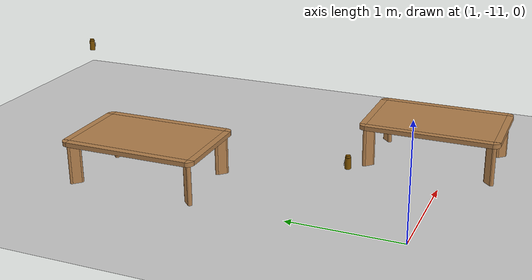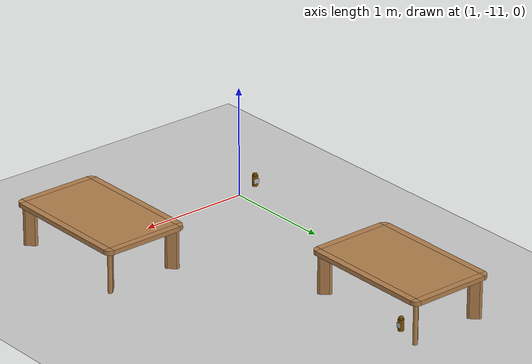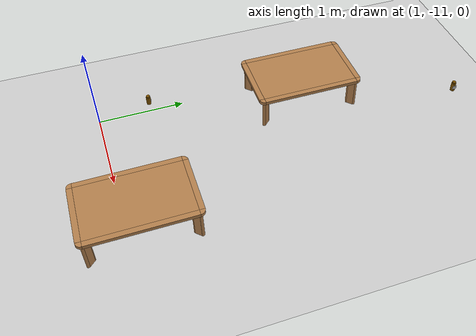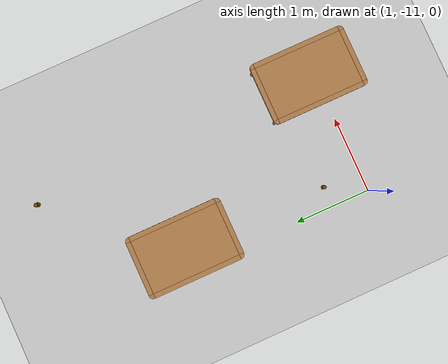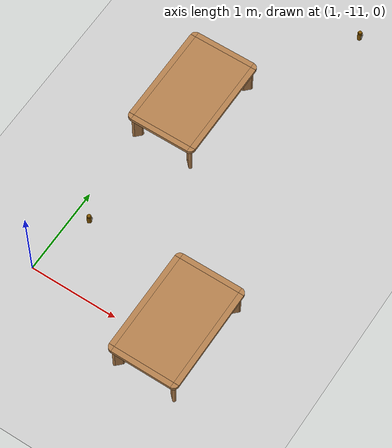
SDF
<sdf version="1.6">
 <world name="default">
  <model name="ground_plane">
   <static>1</static>
   <link name="link">
    <collision name="collision">
     <geometry><plane><normal>0 0 1</normal><size>100 100</size></plane></geometry>
     <surface><friction><ode><mu>100</mu><mu2>50</mu2></ode></friction></surface>
    </collision>
    <visual name="visual">
     <cast_shadows>0</cast_shadows>
     <geometry><plane><normal>0 0 1</normal><size>100 100</size></plane></geometry>
     <material>
      <script><uri>file://media/materials/scripts/gazebo.material</uri><name>Gazebo/Grey</name></script>
     </material>
    </visual>
   </link>
  </model>
  <model name="bottle_clone_0">
   <link name="link">
    <inertial>
     <mass>0.05</mass>
     <inertia><ixx>0.00058</ixx><ixy>0</ixy><ixz>0</ixz><iyy>0.00058</iyy><iyz>0</iyz><izz>0.00016</izz></inertia>
    </inertial>
    <visual name="top">
     <pose>0 0 0.0555 0 -0 0</pose>
     <geometry><cylinder><radius>0.019</radius><length>0.016</length></cylinder></geometry>
     <material>
      <ambient>1 0.647 0 1</ambient>
      <diffuse>0.5 0.3235 0 1</diffuse>
      <specular>0.1 0.1 0.1 1</specular>
      <emissive>0 0 0 0</emissive>
     </material>
    </visual>
    <collision name="collision_top">
     <pose>0 0 0.0555 0 -0 0</pose>
     <geometry><cylinder><radius>0.019</radius><length>0.016</length></cylinder></geometry>
     <surface>
      <bounce><restitution_coefficient>0.2</restitution_coefficient><threshold>0</threshold></bounce>
      <contact><ode><kp>10000</kp><max_vel>10</max_vel></ode></contact>
     </surface>
    </collision>
    <visual name="bottom">
     <geometry><cylinder><radius>0.0245</radius><length>0.095</length></cylinder></geometry>
     <material>
      <ambient>1 0.7 0.3 1</ambient>
      <diffuse>0.5 0.3235 0 1</diffuse>
      <specular>0.1 0.1 0.1 1</specular>
      <emissive>0 0 0 0</emissive>
     </material>
    </visual>
    <collision name="collision_bottom">
     <geometry><cylinder><radius>0.0245</radius><length>0.095</length></cylinder></geometry>
     <surface>
      <bounce><restitution_coefficient>0.2</restitution_coefficient><threshold>0</threshold></bounce>
      <contact><ode><kp>100000</kp><max_vel>10</max_vel></ode></contact>
     </surface>
    </collision>
    <velocity_decay><linear>0</linear><angular>0</angular></velocity_decay>
    <visual name="marker_4000">
     <pose>0.0245 0 0 0 1.57 3.141</pose>
     <geometry><box><size>0.045 0.045 0.0001</size></box></geometry>
     <material>
      <script>
       <uri>model://marker/4000/scripts</uri>
       <uri>model://marker/4000/textures</uri>
       <name>Marker/4000</name>
      </script>
     </material>
    </visual>
   </link>
   <static>0</static>
   <pose>2.50267 -7.30037 0.7475 6e-06 -7e-06 0.007734</pose>
  </model>
  <model name="kitchen_lowtable_clone">
   <link name="link">
    <inertial>
     <mass>10</mass>
     <inertia><ixx>1</ixx><ixy>0</ixy><ixz>0</ixz><iyy>1</iyy><iyz>0</iyz><izz>1</izz></inertia>
    </inertial>
    <visual name="center_board">
     <pose>0 0 0.38 0 -0 0</pose>
     <geometry><box><size>0.68 1.13 0.04</size></box></geometry>
     <material>
      <script><uri>model://base_materials/wood/scripts/wood.material</uri><name>base_materials/wood</name></script>
     </material>
    </visual>
    <collision name="collision_center_board">
     <pose>0 0 0.38 0 -0 0</pose>
     <geometry><box><size>0.68 1.13 0.04</size></box></geometry>
    </collision>
    <visual name="front_board">
     <pose>0.37 0 0.38 0 -0 0</pose>
     <geometry><box><size>0.06 1.13 0.04</size></box></geometry>
     <material>
      <script><uri>model://base_materials/wood/scripts/wood.material</uri><name>base_materials/wood</name></script>
     </material>
    </visual>
    <collision name="collision_front_board">
     <pose>0.37 0 0.38 0 -0 0</pose>
     <geometry><box><size>0.06 1.13 0.04</size></box></geometry>
    </collision>
    <visual name="back_board">
     <pose>-0.37 0 0.38 0 -0 0</pose>
     <geometry><box><size>0.06 1.13 0.04</size></box></geometry>
     <material>
      <script><uri>model://base_materials/wood/scripts/wood.material</uri><name>base_materials/wood</name></script>
     </material>
    </visual>
    <collision name="collision_back_board">
     <pose>-0.37 0 0.38 0 -0 0</pose>
     <geometry><box><size>0.06 1.13 0.04</size></box></geometry>
    </collision>
    <visual name="right_board">
     <pose>0 0.595 0.38 0 -0 0</pose>
     <geometry><box><size>0.68 0.06 0.04</size></box></geometry>
     <material>
      <script><uri>model://base_materials/wood/scripts/wood.material</uri><name>base_materials/wood</name></script>
     </material>
    </visual>
    <collision name="collision_right_board">
     <pose>0 0.595 0.38 0 -0 0</pose>
     <geometry><box><size>0.68 0.06 0.04</size></box></geometry>
    </collision>
    <visual name="left_board">
     <pose>0 -0.595 0.38 0 -0 0</pose>
     <geometry><box><size>0.68 0.06 0.04</size></box></geometry>
     <material>
      <script><uri>model://base_materials/wood/scripts/wood.material</uri><name>base_materials/wood</name></script>
     </material>
    </visual>
    <collision name="collision_left_board">
     <pose>0 -0.595 0.38 0 -0 0</pose>
     <geometry><box><size>0.68 0.06 0.04</size></box></geometry>
    </collision>
    <visual name="front_right_corner_board">
     <pose>0.34 0.565 0.38 0 -0 0</pose>
     <geometry><cylinder><radius>0.06</radius><length>0.039</length></cylinder></geometry>
     <material>
      <script><uri>model://base_materials/wood/scripts/wood.material</uri><name>base_materials/wood</name></script>
     </material>
    </visual>
    <collision name="collision_front_right_corner_board">
     <pose>0.34 0.565 0.38 0 -0 0</pose>
     <geometry><cylinder><radius>0.06</radius><length>0.039</length></cylinder></geometry>
    </collision>
    <visual name="front_left_corner_board">
     <pose>0.34 -0.565 0.38 0 -0 0</pose>
     <geometry><cylinder><radius>0.06</radius><length>0.039</length></cylinder></geometry>
     <material>
      <script><uri>model://base_materials/wood/scripts/wood.material</uri><name>base_materials/wood</name></script>
     </material>
    </visual>
    <collision name="collision_front_left_corner_board">
     <pose>0.34 -0.565 0.38 0 -0 0</pose>
     <geometry><cylinder><radius>0.06</radius><length>0.039</length></cylinder></geometry>
    </collision>
    <visual name="front_back_right_corner_board">
     <pose>-0.34 0.565 0.38 0 -0 0</pose>
     <geometry><cylinder><radius>0.06</radius><length>0.039</length></cylinder></geometry>
     <material>
      <script><uri>model://base_materials/wood/scripts/wood.material</uri><name>base_materials/wood</name></script>
     </material>
    </visual>
    <collision name="collision_back_right_corner_board">
     <pose>-0.34 0.565 0.38 0 -0 0</pose>
     <geometry><cylinder><radius>0.06</radius><length>0.039</length></cylinder></geometry>
    </collision>
    <visual name="front_back_left_corner_board">
     <pose>-0.34 -0.565 0.38 0 -0 0</pose>
     <geometry><cylinder><radius>0.06</radius><length>0.039</length></cylinder></geometry>
     <material>
      <script><uri>model://base_materials/wood/scripts/wood.material</uri><name>base_materials/wood</name></script>
     </material>
    </visual>
    <collision name="collision_back_left_corner_board">
     <pose>-0.34 -0.565 0.38 0 -0 0</pose>
     <geometry><cylinder><radius>0.06</radius><length>0.039</length></cylinder></geometry>
    </collision>
    <visual name="front_left_corner_frame1">
     <pose>0.345858 -0.57086 0.18 0 -0 0</pose>
     <geometry><cylinder><radius>0.02</radius><length>0.36</length></cylinder></geometry>
     <material>
      <script><uri>model://base_materials/wood/scripts/wood.material</uri><name>base_materials/wood</name></script>
     </material>
    </visual>
    <collision name="collision_front_left_corner_frame1">
     <pose>0.345858 -0.57086 0.18 0 -0 0</pose>
     <geometry><cylinder><radius>0.02</radius><length>0.36</length></cylinder></geometry>
    </collision>
    <visual name="front_left_corner_frame2">
     <pose>0.317574 -0.54257 0.18 0 -0 0.7854</pose>
     <geometry><box><size>0.04 0.08 0.36</size></box></geometry>
     <material>
      <script><uri>model://base_materials/wood/scripts/wood.material</uri><name>base_materials/wood</name></script>
     </material>
    </visual>
    <collision name="collision_front_left_corner_frame2">
     <pose>0.317574 -0.54257 0.18 0 -0 0.7854</pose>
     <geometry><box><size>0.04 0.08 0.36</size></box></geometry>
    </collision>
    <visual name="front_left_corner_frame3">
     <pose>0.289289 -0.51429 0.18 0 -0 0</pose>
     <geometry><cylinder><radius>0.02</radius><length>0.36</length></cylinder></geometry>
     <material>
      <script><uri>model://base_materials/wood/scripts/wood.material</uri><name>base_materials/wood</name></script>
     </material>
    </visual>
    <collision name="collision_front_left_corner_frame3">
     <pose>0.289289 -0.51429 0.18 0 -0 0</pose>
     <geometry><cylinder><radius>0.02</radius><length>0.36</length></cylinder></geometry>
    </collision>
    <visual name="front_right_corner_frame1">
     <pose>0.345858 0.57086 0.18 0 -0 0</pose>
     <geometry><cylinder><radius>0.02</radius><length>0.36</length></cylinder></geometry>
     <material>
      <script><uri>model://base_materials/wood/scripts/wood.material</uri><name>base_materials/wood</name></script>
     </material>
    </visual>
    <collision name="collision_front_right_corner_frame1">
     <pose>0.345858 0.57086 0.18 0 -0 0</pose>
     <geometry><cylinder><radius>0.02</radius><length>0.36</length></cylinder></geometry>
    </collision>
    <visual name="front_right_corner_frame2">
     <pose>0.317574 0.54257 0.18 0 0 -0.7854</pose>
     <geometry><box><size>0.04 0.08 0.36</size></box></geometry>
     <material>
      <script><uri>model://base_materials/wood/scripts/wood.material</uri><name>base_materials/wood</name></script>
     </material>
    </visual>
    <collision name="collision_front_right_corner_frame2">
     <pose>0.317574 0.54257 0.18 0 0 -0.7854</pose>
     <geometry><box><size>0.04 0.08 0.36</size></box></geometry>
    </collision>
    <visual name="front_right_corner_frame3">
     <pose>0.289289 0.51429 0.18 0 -0 0</pose>
     <geometry><cylinder><radius>0.02</radius><length>0.36</length></cylinder></geometry>
     <material>
      <script><uri>model://base_materials/wood/scripts/wood.material</uri><name>base_materials/wood</name></script>
     </material>
    </visual>
    <collision name="collision_front_right_corner_frame3">
     <pose>0.289289 0.51429 0.18 0 -0 0</pose>
     <geometry><cylinder><radius>0.02</radius><length>0.36</length></cylinder></geometry>
    </collision>
    <visual name="back_left_corner_frame1">
     <pose>-0.345858 -0.57086 0.18 0 -0 0</pose>
     <geometry><cylinder><radius>0.02</radius><length>0.36</length></cylinder></geometry>
     <material>
      <script><uri>model://base_materials/wood/scripts/wood.material</uri><name>base_materials/wood</name></script>
     </material>
    </visual>
    <collision name="collision_back_left_corner_frame1">
     <pose>-0.345858 -0.57086 0.18 0 -0 0</pose>
     <geometry><cylinder><radius>0.02</radius><length>0.36</length></cylinder></geometry>
    </collision>
    <visual name="back_left_corner_frame2">
     <pose>-0.317574 -0.54257 0.18 0 0 -0.7854</pose>
     <geometry><box><size>0.04 0.08 0.36</size></box></geometry>
     <material>
      <script><uri>model://base_materials/wood/scripts/wood.material</uri><name>base_materials/wood</name></script>
     </material>
    </visual>
    <collision name="collision_back_left_corner_frame2">
     <pose>-0.317574 -0.54257 0.18 0 0 -0.7854</pose>
     <geometry><box><size>0.04 0.08 0.36</size></box></geometry>
    </collision>
    <visual name="back_left_corner_frame3">
     <pose>-0.289289 -0.51429 0.18 0 -0 0</pose>
     <geometry><cylinder><radius>0.02</radius><length>0.36</length></cylinder></geometry>
     <material>
      <script><uri>model://base_materials/wood/scripts/wood.material</uri><name>base_materials/wood</name></script>
     </material>
    </visual>
    <collision name="collision_back_left_corner_frame3">
     <pose>-0.289289 -0.51429 0.18 0 -0 0</pose>
     <geometry><cylinder><radius>0.02</radius><length>0.36</length></cylinder></geometry>
    </collision>
    <visual name="back_right_corner_frame1">
     <pose>-0.345858 0.57086 0.18 0 -0 0</pose>
     <geometry><cylinder><radius>0.02</radius><length>0.36</length></cylinder></geometry>
     <material>
      <script><uri>model://base_materials/wood/scripts/wood.material</uri><name>base_materials/wood</name></script>
     </material>
    </visual>
    <collision name="collision_back_right_corner_frame1">
     <pose>-0.345858 0.57086 0.18 0 -0 0</pose>
     <geometry><cylinder><radius>0.02</radius><length>0.36</length></cylinder></geometry>
    </collision>
    <visual name="back_right_corner_frame2">
     <pose>-0.317574 0.54257 0.18 0 -0 0.7854</pose>
     <geometry><box><size>0.04 0.08 0.36</size></box></geometry>
     <material>
      <script><uri>model://base_materials/wood/scripts/wood.material</uri><name>base_materials/wood</name></script>
     </material>
    </visual>
    <collision name="collision_back_right_corner_frame2">
     <pose>-0.317574 0.54257 0.18 0 -0 0.7854</pose>
     <geometry><box><size>0.04 0.08 0.36</size></box></geometry>
    </collision>
    <visual name="back_right_corner_frame3">
     <pose>-0.289289 0.51429 0.18 0 -0 0</pose>
     <geometry><cylinder><radius>0.02</radius><length>0.36</length></cylinder></geometry>
     <material>
      <script><uri>model://base_materials/wood/scripts/wood.material</uri><name>base_materials/wood</name></script>
     </material>
    </visual>
    <collision name="collision_back_right_corner_frame3">
     <pose>-0.289289 0.51429 0.18 0 -0 0</pose>
     <geometry><cylinder><radius>0.02</radius><length>0.36</length></cylinder></geometry>
    </collision>
    <velocity_decay><linear>0</linear><angular>0</angular></velocity_decay>
   </link>
   <static>1</static>
   <pose>1.3285 -8.6006 0 0 -0 0</pose>
  </model>
  <model name="kitchen_lowtable_clone_1">
   <link name="link">
    <inertial>
     <mass>10</mass>
     <inertia><ixx>1</ixx><ixy>0</ixy><ixz>0</ixz><iyy>1</iyy><iyz>0</iyz><izz>1</izz></inertia>
    </inertial>
    <visual name="center_board">
     <pose>0 0 0.38 0 -0 0</pose>
     <geometry><box><size>0.68 1.13 0.04</size></box></geometry>
     <material>
      <script><uri>model://base_materials/wood/scripts/wood.material</uri><name>base_materials/wood</name></script>
     </material>
    </visual>
    <collision name="collision_center_board">
     <pose>0 0 0.38 0 -0 0</pose>
     <geometry><box><size>0.68 1.13 0.04</size></box></geometry>
    </collision>
    <visual name="front_board">
     <pose>0.37 0 0.38 0 -0 0</pose>
     <geometry><box><size>0.06 1.13 0.04</size></box></geometry>
     <material>
      <script><uri>model://base_materials/wood/scripts/wood.material</uri><name>base_materials/wood</name></script>
     </material>
    </visual>
    <collision name="collision_front_board">
     <pose>0.37 0 0.38 0 -0 0</pose>
     <geometry><box><size>0.06 1.13 0.04</size></box></geometry>
    </collision>
    <visual name="back_board">
     <pose>-0.37 0 0.38 0 -0 0</pose>
     <geometry><box><size>0.06 1.13 0.04</size></box></geometry>
     <material>
      <script><uri>model://base_materials/wood/scripts/wood.material</uri><name>base_materials/wood</name></script>
     </material>
    </visual>
    <collision name="collision_back_board">
     <pose>-0.37 0 0.38 0 -0 0</pose>
     <geometry><box><size>0.06 1.13 0.04</size></box></geometry>
    </collision>
    <visual name="right_board">
     <pose>0 0.595 0.38 0 -0 0</pose>
     <geometry><box><size>0.68 0.06 0.04</size></box></geometry>
     <material>
      <script><uri>model://base_materials/wood/scripts/wood.material</uri><name>base_materials/wood</name></script>
     </material>
    </visual>
    <collision name="collision_right_board">
     <pose>0 0.595 0.38 0 -0 0</pose>
     <geometry><box><size>0.68 0.06 0.04</size></box></geometry>
    </collision>
    <visual name="left_board">
     <pose>0 -0.595 0.38 0 -0 0</pose>
     <geometry><box><size>0.68 0.06 0.04</size></box></geometry>
     <material>
      <script><uri>model://base_materials/wood/scripts/wood.material</uri><name>base_materials/wood</name></script>
     </material>
    </visual>
    <collision name="collision_left_board">
     <pose>0 -0.595 0.38 0 -0 0</pose>
     <geometry><box><size>0.68 0.06 0.04</size></box></geometry>
    </collision>
    <visual name="front_right_corner_board">
     <pose>0.34 0.565 0.38 0 -0 0</pose>
     <geometry><cylinder><radius>0.06</radius><length>0.039</length></cylinder></geometry>
     <material>
      <script><uri>model://base_materials/wood/scripts/wood.material</uri><name>base_materials/wood</name></script>
     </material>
    </visual>
    <collision name="collision_front_right_corner_board">
     <pose>0.34 0.565 0.38 0 -0 0</pose>
     <geometry><cylinder><radius>0.06</radius><length>0.039</length></cylinder></geometry>
    </collision>
    <visual name="front_left_corner_board">
     <pose>0.34 -0.565 0.38 0 -0 0</pose>
     <geometry><cylinder><radius>0.06</radius><length>0.039</length></cylinder></geometry>
     <material>
      <script><uri>model://base_materials/wood/scripts/wood.material</uri><name>base_materials/wood</name></script>
     </material>
    </visual>
    <collision name="collision_front_left_corner_board">
     <pose>0.34 -0.565 0.38 0 -0 0</pose>
     <geometry><cylinder><radius>0.06</radius><length>0.039</length></cylinder></geometry>
    </collision>
    <visual name="front_back_right_corner_board">
     <pose>-0.34 0.565 0.38 0 -0 0</pose>
     <geometry><cylinder><radius>0.06</radius><length>0.039</length></cylinder></geometry>
     <material>
      <script><uri>model://base_materials/wood/scripts/wood.material</uri><name>base_materials/wood</name></script>
     </material>
    </visual>
    <collision name="collision_back_right_corner_board">
     <pose>-0.34 0.565 0.38 0 -0 0</pose>
     <geometry><cylinder><radius>0.06</radius><length>0.039</length></cylinder></geometry>
    </collision>
    <visual name="front_back_left_corner_board">
     <pose>-0.34 -0.565 0.38 0 -0 0</pose>
     <geometry><cylinder><radius>0.06</radius><length>0.039</length></cylinder></geometry>
     <material>
      <script><uri>model://base_materials/wood/scripts/wood.material</uri><name>base_materials/wood</name></script>
     </material>
    </visual>
    <collision name="collision_back_left_corner_board">
     <pose>-0.34 -0.565 0.38 0 -0 0</pose>
     <geometry><cylinder><radius>0.06</radius><length>0.039</length></cylinder></geometry>
    </collision>
    <visual name="front_left_corner_frame1">
     <pose>0.345858 -0.57086 0.18 0 -0 0</pose>
     <geometry><cylinder><radius>0.02</radius><length>0.36</length></cylinder></geometry>
     <material>
      <script><uri>model://base_materials/wood/scripts/wood.material</uri><name>base_materials/wood</name></script>
     </material>
    </visual>
    <collision name="collision_front_left_corner_frame1">
     <pose>0.345858 -0.57086 0.18 0 -0 0</pose>
     <geometry><cylinder><radius>0.02</radius><length>0.36</length></cylinder></geometry>
    </collision>
    <visual name="front_left_corner_frame2">
     <pose>0.317574 -0.54257 0.18 0 -0 0.7854</pose>
     <geometry><box><size>0.04 0.08 0.36</size></box></geometry>
     <material>
      <script><uri>model://base_materials/wood/scripts/wood.material</uri><name>base_materials/wood</name></script>
     </material>
    </visual>
    <collision name="collision_front_left_corner_frame2">
     <pose>0.317574 -0.54257 0.18 0 -0 0.7854</pose>
     <geometry><box><size>0.04 0.08 0.36</size></box></geometry>
    </collision>
    <visual name="front_left_corner_frame3">
     <pose>0.289289 -0.51429 0.18 0 -0 0</pose>
     <geometry><cylinder><radius>0.02</radius><length>0.36</length></cylinder></geometry>
     <material>
      <script><uri>model://base_materials/wood/scripts/wood.material</uri><name>base_materials/wood</name></script>
     </material>
    </visual>
    <collision name="collision_front_left_corner_frame3">
     <pose>0.289289 -0.51429 0.18 0 -0 0</pose>
     <geometry><cylinder><radius>0.02</radius><length>0.36</length></cylinder></geometry>
    </collision>
    <visual name="front_right_corner_frame1">
     <pose>0.345858 0.57086 0.18 0 -0 0</pose>
     <geometry><cylinder><radius>0.02</radius><length>0.36</length></cylinder></geometry>
     <material>
      <script><uri>model://base_materials/wood/scripts/wood.material</uri><name>base_materials/wood</name></script>
     </material>
    </visual>
    <collision name="collision_front_right_corner_frame1">
     <pose>0.345858 0.57086 0.18 0 -0 0</pose>
     <geometry><cylinder><radius>0.02</radius><length>0.36</length></cylinder></geometry>
    </collision>
    <visual name="front_right_corner_frame2">
     <pose>0.317574 0.54257 0.18 0 0 -0.7854</pose>
     <geometry><box><size>0.04 0.08 0.36</size></box></geometry>
     <material>
      <script><uri>model://base_materials/wood/scripts/wood.material</uri><name>base_materials/wood</name></script>
     </material>
    </visual>
    <collision name="collision_front_right_corner_frame2">
     <pose>0.317574 0.54257 0.18 0 0 -0.7854</pose>
     <geometry><box><size>0.04 0.08 0.36</size></box></geometry>
    </collision>
    <visual name="front_right_corner_frame3">
     <pose>0.289289 0.51429 0.18 0 -0 0</pose>
     <geometry><cylinder><radius>0.02</radius><length>0.36</length></cylinder></geometry>
     <material>
      <script><uri>model://base_materials/wood/scripts/wood.material</uri><name>base_materials/wood</name></script>
     </material>
    </visual>
    <collision name="collision_front_right_corner_frame3">
     <pose>0.289289 0.51429 0.18 0 -0 0</pose>
     <geometry><cylinder><radius>0.02</radius><length>0.36</length></cylinder></geometry>
    </collision>
    <visual name="back_left_corner_frame1">
     <pose>-0.345858 -0.57086 0.18 0 -0 0</pose>
     <geometry><cylinder><radius>0.02</radius><length>0.36</length></cylinder></geometry>
     <material>
      <script><uri>model://base_materials/wood/scripts/wood.material</uri><name>base_materials/wood</name></script>
     </material>
    </visual>
    <collision name="collision_back_left_corner_frame1">
     <pose>-0.345858 -0.57086 0.18 0 -0 0</pose>
     <geometry><cylinder><radius>0.02</radius><length>0.36</length></cylinder></geometry>
    </collision>
    <visual name="back_left_corner_frame2">
     <pose>-0.317574 -0.54257 0.18 0 0 -0.7854</pose>
     <geometry><box><size>0.04 0.08 0.36</size></box></geometry>
     <material>
      <script><uri>model://base_materials/wood/scripts/wood.material</uri><name>base_materials/wood</name></script>
     </material>
    </visual>
    <collision name="collision_back_left_corner_frame2">
     <pose>-0.317574 -0.54257 0.18 0 0 -0.7854</pose>
     <geometry><box><size>0.04 0.08 0.36</size></box></geometry>
    </collision>
    <visual name="back_left_corner_frame3">
     <pose>-0.289289 -0.51429 0.18 0 -0 0</pose>
     <geometry><cylinder><radius>0.02</radius><length>0.36</length></cylinder></geometry>
     <material>
      <script><uri>model://base_materials/wood/scripts/wood.material</uri><name>base_materials/wood</name></script>
     </material>
    </visual>
    <collision name="collision_back_left_corner_frame3">
     <pose>-0.289289 -0.51429 0.18 0 -0 0</pose>
     <geometry><cylinder><radius>0.02</radius><length>0.36</length></cylinder></geometry>
    </collision>
    <visual name="back_right_corner_frame1">
     <pose>-0.345858 0.57086 0.18 0 -0 0</pose>
     <geometry><cylinder><radius>0.02</radius><length>0.36</length></cylinder></geometry>
     <material>
      <script><uri>model://base_materials/wood/scripts/wood.material</uri><name>base_materials/wood</name></script>
     </material>
    </visual>
    <collision name="collision_back_right_corner_frame1">
     <pose>-0.345858 0.57086 0.18 0 -0 0</pose>
     <geometry><cylinder><radius>0.02</radius><length>0.36</length></cylinder></geometry>
    </collision>
    <visual name="back_right_corner_frame2">
     <pose>-0.317574 0.54257 0.18 0 -0 0.7854</pose>
     <geometry><box><size>0.04 0.08 0.36</size></box></geometry>
     <material>
      <script><uri>model://base_materials/wood/scripts/wood.material</uri><name>base_materials/wood</name></script>
     </material>
    </visual>
    <collision name="collision_back_right_corner_frame2">
     <pose>-0.317574 0.54257 0.18 0 -0 0.7854</pose>
     <geometry><box><size>0.04 0.08 0.36</size></box></geometry>
    </collision>
    <visual name="back_right_corner_frame3">
     <pose>-0.289289 0.51429 0.18 0 -0 0</pose>
     <geometry><cylinder><radius>0.02</radius><length>0.36</length></cylinder></geometry>
     <material>
      <script><uri>model://base_materials/wood/scripts/wood.material</uri><name>base_materials/wood</name></script>
     </material>
    </visual>
    <collision name="collision_back_right_corner_frame3">
     <pose>-0.289289 0.51429 0.18 0 -0 0</pose>
     <geometry><cylinder><radius>0.02</radius><length>0.36</length></cylinder></geometry>
    </collision>
    <velocity_decay><linear>0</linear><angular>0</angular></velocity_decay>
   </link>
   <static>1</static>
   <pose>2.62121 -10.8354 0 0 -0 0</pose>
  </model>
  <model name="bottle_clone_2_clone_2_clone_0_clone_clone">
   <link name="link">
    <inertial>
     <mass>0.05</mass>
     <inertia><ixx>0.00058</ixx><ixy>0</ixy><ixz>0</ixz><iyy>0.00058</iyy><iyz>0</iyz><izz>0.00016</izz></inertia>
    </inertial>
    <visual name="top">
     <pose>0 0 0.0555 0 -0 0</pose>
     <geometry><cylinder><radius>0.019</radius><length>0.016</length></cylinder></geometry>
     <material>
      <ambient>1 0.647 0 1</ambient>
      <diffuse>0.5 0.3235 0 1</diffuse>
      <specular>0.1 0.1 0.1 1</specular>
      <emissive>0 0 0 0</emissive>
     </material>
    </visual>
    <collision name="collision_top">
     <pose>0 0 0.0555 0 -0 0</pose>
     <geometry><cylinder><radius>0.019</radius><length>0.016</length></cylinder></geometry>
     <surface>
      <bounce><restitution_coefficient>0.2</restitution_coefficient><threshold>0</threshold></bounce>
      <contact><ode><kp>10000</kp><max_vel>10</max_vel></ode></contact>
     </surface>
    </collision>
    <visual name="bottom">
     <geometry><cylinder><radius>0.0245</radius><length>0.095</length></cylinder></geometry>
     <material>
      <ambient>1 0.7 0.3 1</ambient>
      <diffuse>0.5 0.3235 0 1</diffuse>
      <specular>0.1 0.1 0.1 1</specular>
      <emissive>0 0 0 0</emissive>
     </material>
    </visual>
    <collision name="collision_bottom">
     <geometry><cylinder><radius>0.0245</radius><length>0.095</length></cylinder></geometry>
     <surface>
      <bounce><restitution_coefficient>0.2</restitution_coefficient><threshold>0</threshold></bounce>
      <contact><ode><kp>100000</kp><max_vel>10</max_vel></ode></contact>
     </surface>
    </collision>
    <velocity_decay><linear>0</linear><angular>0</angular></velocity_decay>
    <visual name="marker_4000">
     <pose>0.0245 0 0 0 1.57 3.141</pose>
     <geometry><box><size>0.045 0.045 0.0001</size></box></geometry>
     <material>
      <script>
       <uri>model://marker/4000/scripts</uri>
       <uri>model://marker/4000/textures</uri>
       <name>Marker/4000</name>
      </script>
     </material>
    </visual>
   </link>
   <static>0</static>
   <pose>1.30989 -10.4192 0.4475 1e-06 -9e-06 1.41226</pose>
  </model>
 </world>
</sdf>
